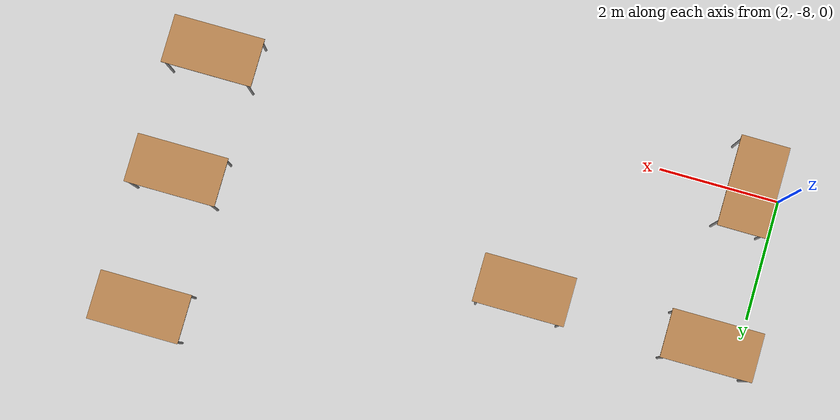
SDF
<sdf version="1.6">
 <world name="default">
  <model name="ground_plane">
   <static>1</static>
   <link name="link">
    <collision name="collision">
     <geometry><plane><normal>0 0 1</normal><size>100 100</size></plane></geometry>
     <surface><friction><ode><mu>100</mu><mu2>50</mu2></ode></friction></surface>
    </collision>
    <visual name="visual">
     <cast_shadows>0</cast_shadows>
     <geometry><plane><normal>0 0 1</normal><size>100 100</size></plane></geometry>
     <material>
      <script><uri>file://media/materials/scripts/gazebo.material</uri><name>Gazebo/Grey</name></script>
     </material>
    </visual>
   </link>
  </model>
  <model name="table_clone_11">
   <static>1</static>
   <link name="link">
    <collision name="surface">
     <pose>0 0 1 0 -0 0</pose>
     <geometry><box><size>1.5 0.8 0.03</size></box></geometry>
     <surface><friction><ode><mu>0.6</mu><mu2>0.6</mu2></ode></friction></surface>
    </collision>
    <visual name="visual1">
     <pose>0 0 1 0 -0 0</pose>
     <geometry><box><size>1.5 0.8 0.03</size></box></geometry>
     <material>
      <script><uri>file://media/materials/scripts/gazebo.material</uri><name>Gazebo/Wood</name></script>
     </material>
    </visual>
    <collision name="front_left_leg">
     <pose>0.68 0.38 0.5 0 -0 0</pose>
     <geometry><cylinder><radius>0.02</radius><length>1</length></cylinder></geometry>
    </collision>
    <visual name="front_left_leg">
     <pose>0.68 0.38 0.5 0 -0 0</pose>
     <geometry><cylinder><radius>0.02</radius><length>1</length></cylinder></geometry>
     <material>
      <script><uri>file://media/materials/scripts/gazebo.material</uri><name>Gazebo/Grey</name></script>
     </material>
    </visual>
    <collision name="front_right_leg">
     <pose>0.68 -0.38 0.5 0 -0 0</pose>
     <geometry><cylinder><radius>0.02</radius><length>1</length></cylinder></geometry>
    </collision>
    <visual name="front_right_leg">
     <pose>0.68 -0.38 0.5 0 -0 0</pose>
     <geometry><cylinder><radius>0.02</radius><length>1</length></cylinder></geometry>
     <material>
      <script><uri>file://media/materials/scripts/gazebo.material</uri><name>Gazebo/Grey</name></script>
     </material>
    </visual>
    <collision name="back_right_leg">
     <pose>-0.68 -0.38 0.5 0 -0 0</pose>
     <geometry><cylinder><radius>0.02</radius><length>1</length></cylinder></geometry>
    </collision>
    <visual name="back_right_leg">
     <pose>-0.68 -0.38 0.5 0 -0 0</pose>
     <geometry><cylinder><radius>0.02</radius><length>1</length></cylinder></geometry>
     <material>
      <script><uri>file://media/materials/scripts/gazebo.material</uri><name>Gazebo/Grey</name></script>
     </material>
    </visual>
    <collision name="back_left_leg">
     <pose>-0.68 0.38 0.5 0 -0 0</pose>
     <geometry><cylinder><radius>0.02</radius><length>1</length></cylinder></geometry>
    </collision>
    <visual name="back_left_leg">
     <pose>-0.68 0.38 0.5 0 -0 0</pose>
     <geometry><cylinder><radius>0.02</radius><length>1</length></cylinder></geometry>
     <material>
      <script><uri>file://media/materials/scripts/gazebo.material</uri><name>Gazebo/Grey</name></script>
     </material>
    </visual>
   </link>
   <pose>2.56075 -5.39293 0 0 -0 0</pose>
  </model>
  <model name="table_clone_12">
   <static>1</static>
   <link name="link">
    <collision name="surface">
     <pose>0 0 1 0 -0 0</pose>
     <geometry><box><size>1.5 0.8 0.03</size></box></geometry>
     <surface><friction><ode><mu>0.6</mu><mu2>0.6</mu2></ode></friction></surface>
    </collision>
    <visual name="visual1">
     <pose>0 0 1 0 -0 0</pose>
     <geometry><box><size>1.5 0.8 0.03</size></box></geometry>
     <material>
      <script><uri>file://media/materials/scripts/gazebo.material</uri><name>Gazebo/Wood</name></script>
     </material>
    </visual>
    <collision name="front_left_leg">
     <pose>0.68 0.38 0.5 0 -0 0</pose>
     <geometry><cylinder><radius>0.02</radius><length>1</length></cylinder></geometry>
    </collision>
    <visual name="front_left_leg">
     <pose>0.68 0.38 0.5 0 -0 0</pose>
     <geometry><cylinder><radius>0.02</radius><length>1</length></cylinder></geometry>
     <material>
      <script><uri>file://media/materials/scripts/gazebo.material</uri><name>Gazebo/Grey</name></script>
     </material>
    </visual>
    <collision name="front_right_leg">
     <pose>0.68 -0.38 0.5 0 -0 0</pose>
     <geometry><cylinder><radius>0.02</radius><length>1</length></cylinder></geometry>
    </collision>
    <visual name="front_right_leg">
     <pose>0.68 -0.38 0.5 0 -0 0</pose>
     <geometry><cylinder><radius>0.02</radius><length>1</length></cylinder></geometry>
     <material>
      <script><uri>file://media/materials/scripts/gazebo.material</uri><name>Gazebo/Grey</name></script>
     </material>
    </visual>
    <collision name="back_right_leg">
     <pose>-0.68 -0.38 0.5 0 -0 0</pose>
     <geometry><cylinder><radius>0.02</radius><length>1</length></cylinder></geometry>
    </collision>
    <visual name="back_right_leg">
     <pose>-0.68 -0.38 0.5 0 -0 0</pose>
     <geometry><cylinder><radius>0.02</radius><length>1</length></cylinder></geometry>
     <material>
      <script><uri>file://media/materials/scripts/gazebo.material</uri><name>Gazebo/Grey</name></script>
     </material>
    </visual>
    <collision name="back_left_leg">
     <pose>-0.68 0.38 0.5 0 -0 0</pose>
     <geometry><cylinder><radius>0.02</radius><length>1</length></cylinder></geometry>
    </collision>
    <visual name="back_left_leg">
     <pose>-0.68 0.38 0.5 0 -0 0</pose>
     <geometry><cylinder><radius>0.02</radius><length>1</length></cylinder></geometry>
     <material>
      <script><uri>file://media/materials/scripts/gazebo.material</uri><name>Gazebo/Grey</name></script>
     </material>
    </visual>
   </link>
   <pose>5.64085 -5.43174 0 0 -0 0</pose>
  </model>
  <model name="table_clone_14">
   <static>1</static>
   <link name="link">
    <collision name="surface">
     <pose>0 0 1 0 -0 0</pose>
     <geometry><box><size>1.5 0.8 0.03</size></box></geometry>
     <surface><friction><ode><mu>0.6</mu><mu2>0.6</mu2></ode></friction></surface>
    </collision>
    <visual name="visual1">
     <pose>0 0 1 0 -0 0</pose>
     <geometry><box><size>1.5 0.8 0.03</size></box></geometry>
     <material>
      <script><uri>file://media/materials/scripts/gazebo.material</uri><name>Gazebo/Wood</name></script>
     </material>
    </visual>
    <collision name="front_left_leg">
     <pose>0.68 0.38 0.5 0 -0 0</pose>
     <geometry><cylinder><radius>0.02</radius><length>1</length></cylinder></geometry>
    </collision>
    <visual name="front_left_leg">
     <pose>0.68 0.38 0.5 0 -0 0</pose>
     <geometry><cylinder><radius>0.02</radius><length>1</length></cylinder></geometry>
     <material>
      <script><uri>file://media/materials/scripts/gazebo.material</uri><name>Gazebo/Grey</name></script>
     </material>
    </visual>
    <collision name="front_right_leg">
     <pose>0.68 -0.38 0.5 0 -0 0</pose>
     <geometry><cylinder><radius>0.02</radius><length>1</length></cylinder></geometry>
    </collision>
    <visual name="front_right_leg">
     <pose>0.68 -0.38 0.5 0 -0 0</pose>
     <geometry><cylinder><radius>0.02</radius><length>1</length></cylinder></geometry>
     <material>
      <script><uri>file://media/materials/scripts/gazebo.material</uri><name>Gazebo/Grey</name></script>
     </material>
    </visual>
    <collision name="back_right_leg">
     <pose>-0.68 -0.38 0.5 0 -0 0</pose>
     <geometry><cylinder><radius>0.02</radius><length>1</length></cylinder></geometry>
    </collision>
    <visual name="back_right_leg">
     <pose>-0.68 -0.38 0.5 0 -0 0</pose>
     <geometry><cylinder><radius>0.02</radius><length>1</length></cylinder></geometry>
     <material>
      <script><uri>file://media/materials/scripts/gazebo.material</uri><name>Gazebo/Grey</name></script>
     </material>
    </visual>
    <collision name="back_left_leg">
     <pose>-0.68 0.38 0.5 0 -0 0</pose>
     <geometry><cylinder><radius>0.02</radius><length>1</length></cylinder></geometry>
    </collision>
    <visual name="back_left_leg">
     <pose>-0.68 0.38 0.5 0 -0 0</pose>
     <geometry><cylinder><radius>0.02</radius><length>1</length></cylinder></geometry>
     <material>
      <script><uri>file://media/materials/scripts/gazebo.material</uri><name>Gazebo/Grey</name></script>
     </material>
    </visual>
   </link>
   <pose>11.4093 -3.51532 0 0 -0 0</pose>
  </model>
  <model name="table_clone_15">
   <static>1</static>
   <link name="link">
    <collision name="surface">
     <pose>0 0 1 0 -0 0</pose>
     <geometry><box><size>1.5 0.8 0.03</size></box></geometry>
     <surface><friction><ode><mu>0.6</mu><mu2>0.6</mu2></ode></friction></surface>
    </collision>
    <visual name="visual1">
     <pose>0 0 1 0 -0 0</pose>
     <geometry><box><size>1.5 0.8 0.03</size></box></geometry>
     <material>
      <script><uri>file://media/materials/scripts/gazebo.material</uri><name>Gazebo/Wood</name></script>
     </material>
    </visual>
    <collision name="front_left_leg">
     <pose>0.68 0.38 0.5 0 -0 0</pose>
     <geometry><cylinder><radius>0.02</radius><length>1</length></cylinder></geometry>
    </collision>
    <visual name="front_left_leg">
     <pose>0.68 0.38 0.5 0 -0 0</pose>
     <geometry><cylinder><radius>0.02</radius><length>1</length></cylinder></geometry>
     <material>
      <script><uri>file://media/materials/scripts/gazebo.material</uri><name>Gazebo/Grey</name></script>
     </material>
    </visual>
    <collision name="front_right_leg">
     <pose>0.68 -0.38 0.5 0 -0 0</pose>
     <geometry><cylinder><radius>0.02</radius><length>1</length></cylinder></geometry>
    </collision>
    <visual name="front_right_leg">
     <pose>0.68 -0.38 0.5 0 -0 0</pose>
     <geometry><cylinder><radius>0.02</radius><length>1</length></cylinder></geometry>
     <material>
      <script><uri>file://media/materials/scripts/gazebo.material</uri><name>Gazebo/Grey</name></script>
     </material>
    </visual>
    <collision name="back_right_leg">
     <pose>-0.68 -0.38 0.5 0 -0 0</pose>
     <geometry><cylinder><radius>0.02</radius><length>1</length></cylinder></geometry>
    </collision>
    <visual name="back_right_leg">
     <pose>-0.68 -0.38 0.5 0 -0 0</pose>
     <geometry><cylinder><radius>0.02</radius><length>1</length></cylinder></geometry>
     <material>
      <script><uri>file://media/materials/scripts/gazebo.material</uri><name>Gazebo/Grey</name></script>
     </material>
    </visual>
    <collision name="back_left_leg">
     <pose>-0.68 0.38 0.5 0 -0 0</pose>
     <geometry><cylinder><radius>0.02</radius><length>1</length></cylinder></geometry>
    </collision>
    <visual name="back_left_leg">
     <pose>-0.68 0.38 0.5 0 -0 0</pose>
     <geometry><cylinder><radius>0.02</radius><length>1</length></cylinder></geometry>
     <material>
      <script><uri>file://media/materials/scripts/gazebo.material</uri><name>Gazebo/Grey</name></script>
     </material>
    </visual>
   </link>
   <pose>11.4698 -5.75573 0 0 -0 0</pose>
  </model>
  <model name="table_clone_16">
   <static>1</static>
   <link name="link">
    <collision name="surface">
     <pose>0 0 1 0 -0 0</pose>
     <geometry><box><size>1.5 0.8 0.03</size></box></geometry>
     <surface><friction><ode><mu>0.6</mu><mu2>0.6</mu2></ode></friction></surface>
    </collision>
    <visual name="visual1">
     <pose>0 0 1 0 -0 0</pose>
     <geometry><box><size>1.5 0.8 0.03</size></box></geometry>
     <material>
      <script><uri>file://media/materials/scripts/gazebo.material</uri><name>Gazebo/Wood</name></script>
     </material>
    </visual>
    <collision name="front_left_leg">
     <pose>0.68 0.38 0.5 0 -0 0</pose>
     <geometry><cylinder><radius>0.02</radius><length>1</length></cylinder></geometry>
    </collision>
    <visual name="front_left_leg">
     <pose>0.68 0.38 0.5 0 -0 0</pose>
     <geometry><cylinder><radius>0.02</radius><length>1</length></cylinder></geometry>
     <material>
      <script><uri>file://media/materials/scripts/gazebo.material</uri><name>Gazebo/Grey</name></script>
     </material>
    </visual>
    <collision name="front_right_leg">
     <pose>0.68 -0.38 0.5 0 -0 0</pose>
     <geometry><cylinder><radius>0.02</radius><length>1</length></cylinder></geometry>
    </collision>
    <visual name="front_right_leg">
     <pose>0.68 -0.38 0.5 0 -0 0</pose>
     <geometry><cylinder><radius>0.02</radius><length>1</length></cylinder></geometry>
     <material>
      <script><uri>file://media/materials/scripts/gazebo.material</uri><name>Gazebo/Grey</name></script>
     </material>
    </visual>
    <collision name="back_right_leg">
     <pose>-0.68 -0.38 0.5 0 -0 0</pose>
     <geometry><cylinder><radius>0.02</radius><length>1</length></cylinder></geometry>
    </collision>
    <visual name="back_right_leg">
     <pose>-0.68 -0.38 0.5 0 -0 0</pose>
     <geometry><cylinder><radius>0.02</radius><length>1</length></cylinder></geometry>
     <material>
      <script><uri>file://media/materials/scripts/gazebo.material</uri><name>Gazebo/Grey</name></script>
     </material>
    </visual>
    <collision name="back_left_leg">
     <pose>-0.68 0.38 0.5 0 -0 0</pose>
     <geometry><cylinder><radius>0.02</radius><length>1</length></cylinder></geometry>
    </collision>
    <visual name="back_left_leg">
     <pose>-0.68 0.38 0.5 0 -0 0</pose>
     <geometry><cylinder><radius>0.02</radius><length>1</length></cylinder></geometry>
     <material>
      <script><uri>file://media/materials/scripts/gazebo.material</uri><name>Gazebo/Grey</name></script>
     </material>
    </visual>
   </link>
   <pose>11.4539 -7.75314 0 0 -0 0</pose>
  </model>
  <model name="table_clone_17">
   <static>1</static>
   <link name="link">
    <collision name="surface">
     <pose>0 0 1 0 -0 0</pose>
     <geometry><box><size>1.5 0.8 0.03</size></box></geometry>
     <surface><friction><ode><mu>0.6</mu><mu2>0.6</mu2></ode></friction></surface>
    </collision>
    <visual name="visual1">
     <pose>0 0 1 0 -0 0</pose>
     <geometry><box><size>1.5 0.8 0.03</size></box></geometry>
     <material>
      <script><uri>file://media/materials/scripts/gazebo.material</uri><name>Gazebo/Wood</name></script>
     </material>
    </visual>
    <collision name="front_left_leg">
     <pose>0.68 0.38 0.5 0 -0 0</pose>
     <geometry><cylinder><radius>0.02</radius><length>1</length></cylinder></geometry>
    </collision>
    <visual name="front_left_leg">
     <pose>0.68 0.38 0.5 0 -0 0</pose>
     <geometry><cylinder><radius>0.02</radius><length>1</length></cylinder></geometry>
     <material>
      <script><uri>file://media/materials/scripts/gazebo.material</uri><name>Gazebo/Grey</name></script>
     </material>
    </visual>
    <collision name="front_right_leg">
     <pose>0.68 -0.38 0.5 0 -0 0</pose>
     <geometry><cylinder><radius>0.02</radius><length>1</length></cylinder></geometry>
    </collision>
    <visual name="front_right_leg">
     <pose>0.68 -0.38 0.5 0 -0 0</pose>
     <geometry><cylinder><radius>0.02</radius><length>1</length></cylinder></geometry>
     <material>
      <script><uri>file://media/materials/scripts/gazebo.material</uri><name>Gazebo/Grey</name></script>
     </material>
    </visual>
    <collision name="back_right_leg">
     <pose>-0.68 -0.38 0.5 0 -0 0</pose>
     <geometry><cylinder><radius>0.02</radius><length>1</length></cylinder></geometry>
    </collision>
    <visual name="back_right_leg">
     <pose>-0.68 -0.38 0.5 0 -0 0</pose>
     <geometry><cylinder><radius>0.02</radius><length>1</length></cylinder></geometry>
     <material>
      <script><uri>file://media/materials/scripts/gazebo.material</uri><name>Gazebo/Grey</name></script>
     </material>
    </visual>
    <collision name="back_left_leg">
     <pose>-0.68 0.38 0.5 0 -0 0</pose>
     <geometry><cylinder><radius>0.02</radius><length>1</length></cylinder></geometry>
    </collision>
    <visual name="back_left_leg">
     <pose>-0.68 0.38 0.5 0 -0 0</pose>
     <geometry><cylinder><radius>0.02</radius><length>1</length></cylinder></geometry>
     <material>
      <script><uri>file://media/materials/scripts/gazebo.material</uri><name>Gazebo/Grey</name></script>
     </material>
    </visual>
   </link>
   <pose>2.58058 -8 0 0 -0 1.56617</pose>
  </model>
 </world>
</sdf>
